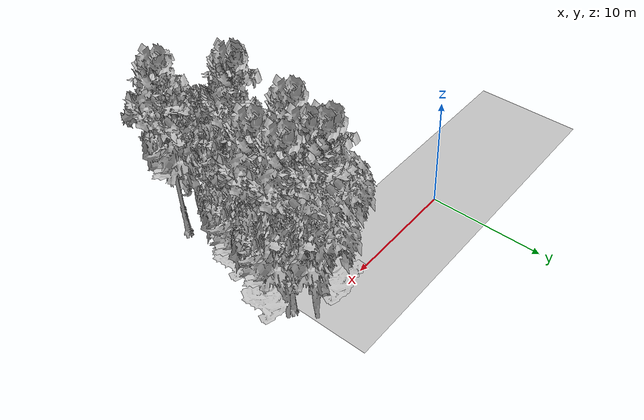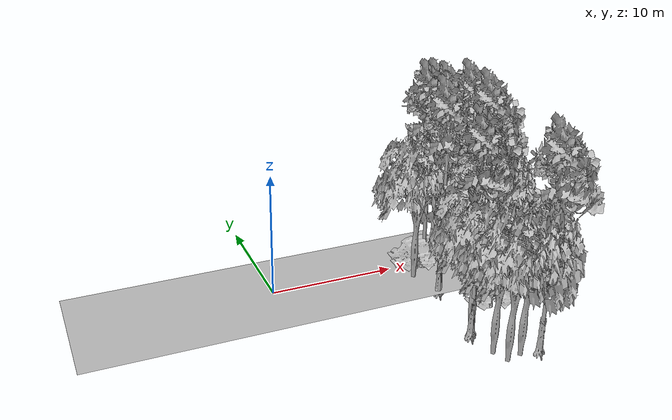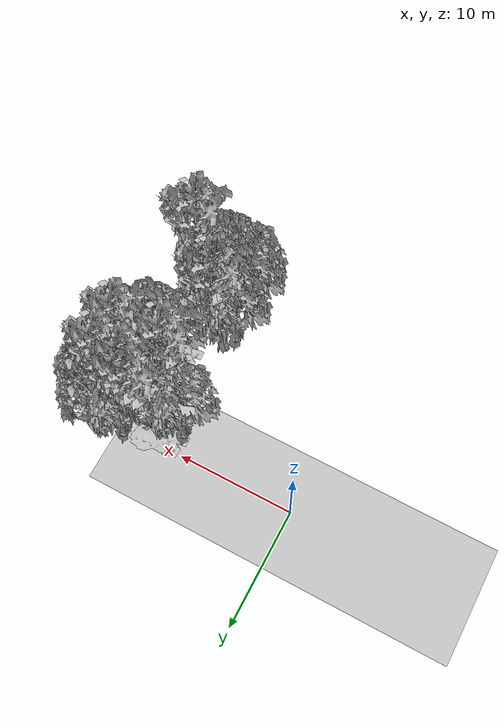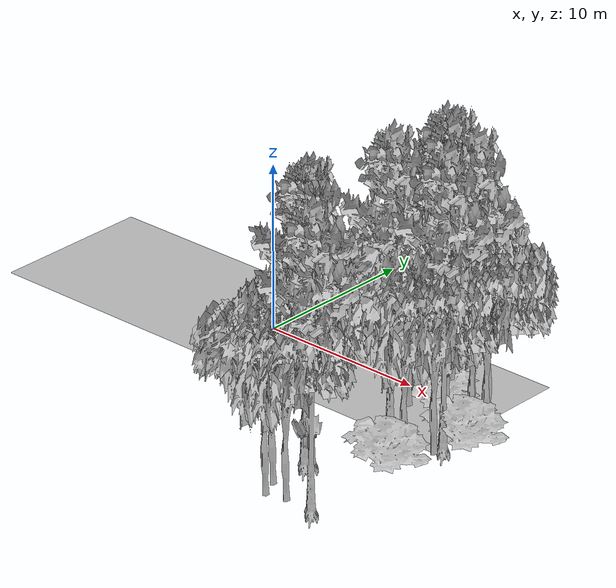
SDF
<sdf version="1.7">
 <world name="default">
  <model name="ground_plane">
   <static>1</static>
   <link name="link">
    <collision name="collision">
     <pose>-50 0 0 0 -0 0</pose>
     <geometry><plane><normal>0 0 1</normal><size>100 100</size></plane></geometry>
     <surface><contact><ode><min_depth>0.01</min_depth><max_vel>0</max_vel></ode></contact></surface>
    </collision>
    <visual name="grass">
     <cast_shadows>0</cast_shadows>
     <geometry>
      <mesh>
       <scale>0.5814285714285714 0.18142857142857144 0.1</scale>
       <uri>file://grass_plane/meshes/grass_plane.dae</uri>
      </mesh>
     </geometry>
    </visual>
   </link>
  </model>
  <model name="Tree 32">
   <static>1</static>
   <pose>13.877538629962096 -1.5973208112124766 0 1.57079 -0 0</pose>
   <link name="link">
    <collision name="collision">
     <geometry><mesh><scale>3.5 5 3.5</scale><uri>model://tree_9/meshes/tree_9.obj</uri></mesh></geometry>
    </collision>
    <visual name="visual">
     <geometry><mesh><scale>3.5 5 3.5</scale><uri>model://tree_9/meshes/tree_9.obj</uri></mesh></geometry>
    </visual>
   </link>
  </model>
  <model name="Tree 46">
   <static>1</static>
   <pose>14.887947755847392 -6.249879719774006 0 1.57079 -0 0</pose>
   <link name="link">
    <collision name="collision">
     <geometry><mesh><scale>3.5 5 3.5</scale><uri>model://tree_2/meshes/tree_2.obj</uri></mesh></geometry>
    </collision>
    <visual name="visual">
     <geometry><mesh><scale>3.5 5 3.5</scale><uri>model://tree_2/meshes/tree_2.obj</uri></mesh></geometry>
    </visual>
   </link>
  </model>
  <model name="Tree 48">
   <static>1</static>
   <pose>16.33543997867966 -3.257514984942331 0 1.57079 -0 0</pose>
   <link name="link">
    <collision name="collision">
     <geometry><mesh><scale>3 2 3</scale><uri>model://tree_3/meshes/tree_3.obj</uri></mesh></geometry>
    </collision>
    <visual name="visual">
     <geometry><mesh><scale>3 2 3</scale><uri>model://tree_3/meshes/tree_3.obj</uri></mesh></geometry>
    </visual>
   </link>
  </model>
  <model name="Tree 74">
   <static>1</static>
   <pose>14.863484475883851 -7.798150255050839 0 1.57079 -0 0</pose>
   <link name="link">
    <collision name="collision">
     <geometry><mesh><scale>3 2 3</scale><uri>model://tree_3/meshes/tree_3.obj</uri></mesh></geometry>
    </collision>
    <visual name="visual">
     <geometry><mesh><scale>3 2 3</scale><uri>model://tree_3/meshes/tree_3.obj</uri></mesh></geometry>
    </visual>
   </link>
  </model>
  <model name="Tree 77">
   <static>1</static>
   <pose>12.26601882877575 -4.255188731559924 0 1.57079 -0 0</pose>
   <link name="link">
    <collision name="collision">
     <geometry><mesh><scale>3.5 5 3.5</scale><uri>model://tree_9/meshes/tree_9.obj</uri></mesh></geometry>
    </collision>
    <visual name="visual">
     <geometry><mesh><scale>3.5 5 3.5</scale><uri>model://tree_9/meshes/tree_9.obj</uri></mesh></geometry>
    </visual>
   </link>
  </model>
  <model name="Tree 83">
   <static>1</static>
   <pose>11.747947677339383 -12.992910351329265 0 1.57079 -0 0</pose>
   <link name="link">
    <collision name="collision">
     <geometry><mesh><scale>3.5 5 3.5</scale><uri>model://tree_2/meshes/tree_2.obj</uri></mesh></geometry>
    </collision>
    <visual name="visual">
     <geometry><mesh><scale>3.5 5 3.5</scale><uri>model://tree_2/meshes/tree_2.obj</uri></mesh></geometry>
    </visual>
   </link>
  </model>
  <model name="Tree 95">
   <static>1</static>
   <pose>12.770970832783433 -0.6187416446715801 0 1.57079 -0 0</pose>
   <link name="link">
    <collision name="collision">
     <geometry><mesh><scale>3.5 5 3.5</scale><uri>model://tree_9/meshes/tree_9.obj</uri></mesh></geometry>
    </collision>
    <visual name="visual">
     <geometry><mesh><scale>3.5 5 3.5</scale><uri>model://tree_9/meshes/tree_9.obj</uri></mesh></geometry>
    </visual>
   </link>
  </model>
  <model name="Tree 136">
   <static>1</static>
   <pose>16.495349784116357 -1.5006106443590959 0 1.57079 -0 0</pose>
   <link name="link">
    <collision name="collision">
     <geometry><mesh><scale>3.5 5 3.5</scale><uri>model://tree_2/meshes/tree_2.obj</uri></mesh></geometry>
    </collision>
    <visual name="visual">
     <geometry><mesh><scale>3.5 5 3.5</scale><uri>model://tree_2/meshes/tree_2.obj</uri></mesh></geometry>
    </visual>
   </link>
  </model>
  <model name="Tree 180">
   <static>1</static>
   <pose>11.60309459598507 -10.293101615653114 0 1.57079 -0 0</pose>
   <link name="link">
    <collision name="collision">
     <geometry><mesh><scale>3.5 5 3.5</scale><uri>model://tree_9/meshes/tree_9.obj</uri></mesh></geometry>
    </collision>
    <visual name="visual">
     <geometry><mesh><scale>3.5 5 3.5</scale><uri>model://tree_9/meshes/tree_9.obj</uri></mesh></geometry>
    </visual>
   </link>
  </model>
  <model name="Tree 185">
   <static>1</static>
   <pose>12.174963393100441 -0.707707280470121 0 1.57079 -0 0</pose>
   <link name="link">
    <collision name="collision">
     <geometry><mesh><scale>3 2 3</scale><uri>model://tree_3/meshes/tree_3.obj</uri></mesh></geometry>
    </collision>
    <visual name="visual">
     <geometry><mesh><scale>3 2 3</scale><uri>model://tree_3/meshes/tree_3.obj</uri></mesh></geometry>
    </visual>
   </link>
  </model>
  <model name="Tree 195">
   <static>1</static>
   <pose>15.797690909072728 -4.932327410484088 0 1.57079 -0 0</pose>
   <link name="link">
    <collision name="collision">
     <geometry><mesh><scale>3.5 5 3.5</scale><uri>model://tree_2/meshes/tree_2.obj</uri></mesh></geometry>
    </collision>
    <visual name="visual">
     <geometry><mesh><scale>3.5 5 3.5</scale><uri>model://tree_2/meshes/tree_2.obj</uri></mesh></geometry>
    </visual>
   </link>
  </model>
  <model name="Tree 202">
   <static>1</static>
   <pose>12.24352504820532 -14.110191551068628 0 1.57079 -0 0</pose>
   <link name="link">
    <collision name="collision">
     <geometry><mesh><scale>3.5 5 3.5</scale><uri>model://tree_2/meshes/tree_2.obj</uri></mesh></geometry>
    </collision>
    <visual name="visual">
     <geometry><mesh><scale>3.5 5 3.5</scale><uri>model://tree_2/meshes/tree_2.obj</uri></mesh></geometry>
    </visual>
   </link>
  </model>
  <model name="Tree 236">
   <static>1</static>
   <pose>11.814907770017435 -10.013340054982798 0 1.57079 -0 0</pose>
   <link name="link">
    <collision name="collision">
     <geometry><mesh><scale>3.5 5 3.5</scale><uri>model://tree_9/meshes/tree_9.obj</uri></mesh></geometry>
    </collision>
    <visual name="visual">
     <geometry><mesh><scale>3.5 5 3.5</scale><uri>model://tree_9/meshes/tree_9.obj</uri></mesh></geometry>
    </visual>
   </link>
  </model>
  <model name="Tree 243">
   <static>1</static>
   <pose>15.178595930994945 -13.740216424127508 0 1.57079 -0 0</pose>
   <link name="link">
    <collision name="collision">
     <geometry><mesh><scale>3.5 5 3.5</scale><uri>model://tree_9/meshes/tree_9.obj</uri></mesh></geometry>
    </collision>
    <visual name="visual">
     <geometry><mesh><scale>3.5 5 3.5</scale><uri>model://tree_9/meshes/tree_9.obj</uri></mesh></geometry>
    </visual>
   </link>
  </model>
  <model name="Tree 313">
   <static>1</static>
   <pose>15.864053459929252 -4.148449301414093 0 1.57079 -0 0</pose>
   <link name="link">
    <collision name="collision">
     <geometry><mesh><scale>3.5 5 3.5</scale><uri>model://tree_9/meshes/tree_9.obj</uri></mesh></geometry>
    </collision>
    <visual name="visual">
     <geometry><mesh><scale>3.5 5 3.5</scale><uri>model://tree_9/meshes/tree_9.obj</uri></mesh></geometry>
    </visual>
   </link>
  </model>
  <model name="Tree 335">
   <static>1</static>
   <pose>13.432787061731666 -13.828579746138928 0 1.57079 -0 0</pose>
   <link name="link">
    <collision name="collision">
     <geometry><mesh><scale>3.5 5 3.5</scale><uri>model://tree_2/meshes/tree_2.obj</uri></mesh></geometry>
    </collision>
    <visual name="visual">
     <geometry><mesh><scale>3.5 5 3.5</scale><uri>model://tree_2/meshes/tree_2.obj</uri></mesh></geometry>
    </visual>
   </link>
  </model>
  <model name="Tree 400">
   <static>1</static>
   <pose>11.27801090117967 -1.7288205959353053 0 1.57079 -0 0</pose>
   <link name="link">
    <collision name="collision">
     <geometry><mesh><scale>3.5 5 3.5</scale><uri>model://tree_2/meshes/tree_2.obj</uri></mesh></geometry>
    </collision>
    <visual name="visual">
     <geometry><mesh><scale>3.5 5 3.5</scale><uri>model://tree_2/meshes/tree_2.obj</uri></mesh></geometry>
    </visual>
   </link>
  </model>
  <model name="Tree 435">
   <static>1</static>
   <pose>13.462063459007922 -0.661281092575642 0 1.57079 -0 0</pose>
   <link name="link">
    <collision name="collision">
     <geometry><mesh><scale>3.5 5 3.5</scale><uri>model://tree_9/meshes/tree_9.obj</uri></mesh></geometry>
    </collision>
    <visual name="visual">
     <geometry><mesh><scale>3.5 5 3.5</scale><uri>model://tree_9/meshes/tree_9.obj</uri></mesh></geometry>
    </visual>
   </link>
  </model>
  <model name="Tree 436">
   <static>1</static>
   <pose>15.767588985720352 -1.6907414811645882 0 1.57079 -0 0</pose>
   <link name="link">
    <collision name="collision">
     <geometry><mesh><scale>3.5 5 3.5</scale><uri>model://tree_9/meshes/tree_9.obj</uri></mesh></geometry>
    </collision>
    <visual name="visual">
     <geometry><mesh><scale>3.5 5 3.5</scale><uri>model://tree_9/meshes/tree_9.obj</uri></mesh></geometry>
    </visual>
   </link>
  </model>
  <model name="Tree 454">
   <static>1</static>
   <pose>15.223639977934468 0.18119490928686943 0 1.57079 -0 0</pose>
   <link name="link">
    <collision name="collision">
     <geometry><mesh><scale>3.5 5 3.5</scale><uri>model://tree_2/meshes/tree_2.obj</uri></mesh></geometry>
    </collision>
    <visual name="visual">
     <geometry><mesh><scale>3.5 5 3.5</scale><uri>model://tree_2/meshes/tree_2.obj</uri></mesh></geometry>
    </visual>
   </link>
  </model>
  <model name="Tree 473">
   <static>1</static>
   <pose>15.951455193386622 -2.0355350581011518 0 1.57079 -0 0</pose>
   <link name="link">
    <collision name="collision">
     <geometry><mesh><scale>3.5 5 3.5</scale><uri>model://tree_2/meshes/tree_2.obj</uri></mesh></geometry>
    </collision>
    <visual name="visual">
     <geometry><mesh><scale>3.5 5 3.5</scale><uri>model://tree_2/meshes/tree_2.obj</uri></mesh></geometry>
    </visual>
   </link>
  </model>
  <model name="Tree 509">
   <static>1</static>
   <pose>11.549534272690813 -10.228913585983136 0 1.57079 -0 0</pose>
   <link name="link">
    <collision name="collision">
     <geometry><mesh><scale>3.5 5 3.5</scale><uri>model://tree_2/meshes/tree_2.obj</uri></mesh></geometry>
    </collision>
    <visual name="visual">
     <geometry><mesh><scale>3.5 5 3.5</scale><uri>model://tree_2/meshes/tree_2.obj</uri></mesh></geometry>
    </visual>
   </link>
  </model>
 </world>
</sdf>
